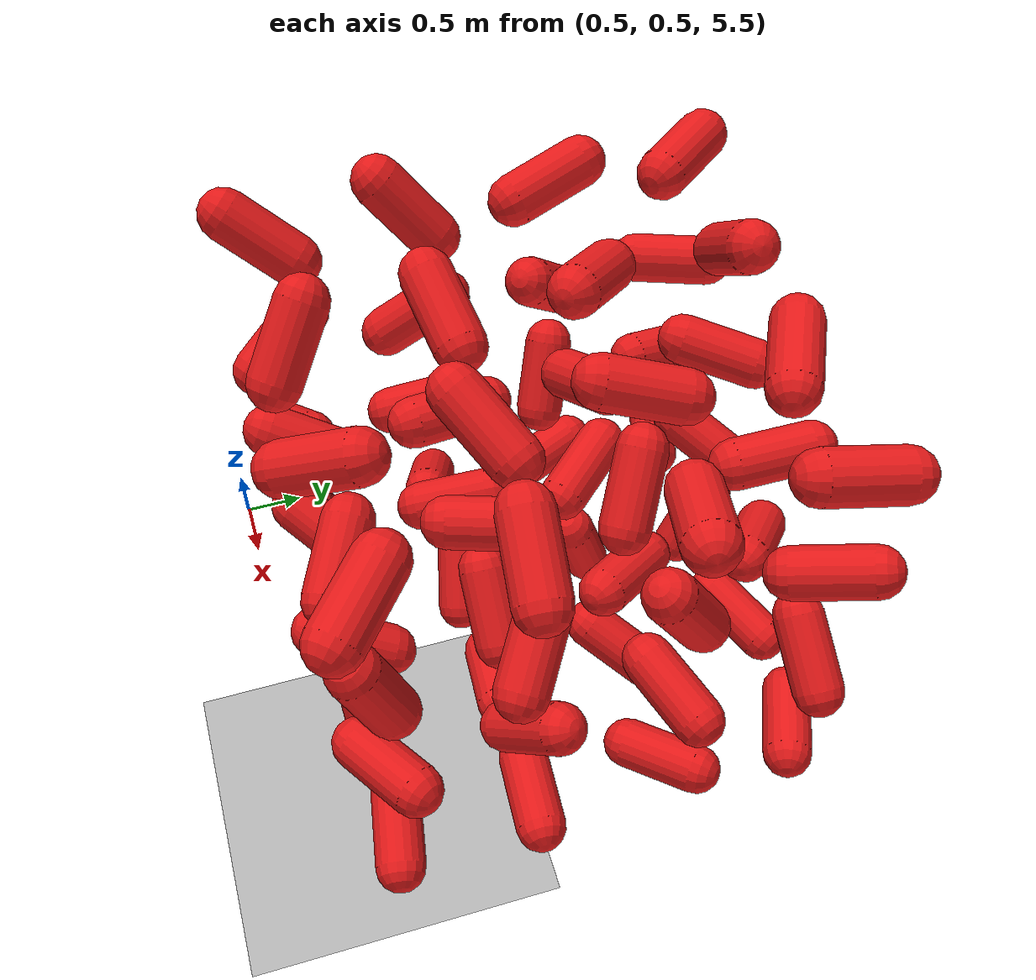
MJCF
<mujoco model="Humanoid and 100 objects">
    <compiler angle="degree"/>

    <option timestep="0.01" iterations="50" solver="PGS" jacobian="sparse" cone="elliptic" tolerance="1e-10"/>

    <size njmax="5000" nconmax="2000" nstack="1000000000"/>

    <default>
        <geom solimp=".9 .9 .01"/>

        <default class="object5">
			<geom type="capsule" material="geom" rgba=".9 .1 .1 1" size="0.200000 0.300000"/>
        </default>
    </default>

    <asset>
        <texture type="skybox" builtin="gradient" width="128" height="128" rgb1=".4 .6 .8" rgb2="0 0 0"/>
        <texture name="texgeom" type="cube" builtin="flat" mark="cross" width="128" height="128"
            rgb1="0.6 0.6 0.6" rgb2="0.6 0.6 0.6" markrgb="1 1 1"/>
        <texture name="texplane" type="2d" builtin="checker" rgb1=".4 .4 .4" rgb2=".6 .6 .6"
            width="512" height="512"/>
        <material name='geom' texture="texgeom" texuniform="true"/>
        <material name='MatPlane' reflectance='0.3' texture="texplane" texrepeat="1 1" texuniform="true"/>
    </asset>

    <visual>
        <quality shadowsize="4096" offsamples="8"/>
        <map znear="0.1" force="0.05"/>
    </visual>

    <statistic extent="4"/>

    <worldbody>
        <light directional="true" diffuse=".8 .8 .8" pos="0 0 10" dir="0 0 -10"/>

        <geom pos="0 0 0" type="plane" size="3 3 .5" rgba=".7 .7 .7 1" material="MatPlane"/>
		<body pos="1.100454 1.100313 6.100498" quat="0.115513 0.745977 -0.614010 -0.230582"> <freejoint/> <geom class="object5"/> </body>
		<body pos="1.100797 1.100507 7.200207" quat="0.439313 0.552747 -0.692587 -0.147641"> <freejoint/> <geom class="object5"/> </body>
		<body pos="1.100106 1.100975 8.300319" quat="0.294270 0.028689 0.845383 -0.444871"> <freejoint/> <geom class="object5"/> </body>
		<body pos="1.100762 1.100662 9.400040" quat="-0.630170 -0.467707 -0.099185 0.611799"> <freejoint/> <geom class="object5"/> </body>
		<body pos="1.100868 2.200561 6.100651" quat="-0.156700 -0.697527 0.544711 0.438395"> <freejoint/> <geom class="object5"/> </body>
		<body pos="1.100219 2.200448 7.200226" quat="0.647057 -0.564225 -0.260403 -0.441767"> <freejoint/> <geom class="object5"/> </body>
		<body pos="1.100583 2.200579 8.300268" quat="-0.550433 0.257038 -0.399498 -0.686554"> <freejoint/> <geom class="object5"/> </body>
		<body pos="1.100041 2.200959 9.400396" quat="0.083600 -0.661734 -0.649131 -0.365716"> <freejoint/> <geom class="object5"/> </body>
		<body pos="1.100985 3.300358 6.100094" quat="0.247465 0.501838 -0.551944 0.618285"> <freejoint/> <geom class="object5"/> </body>
		<body pos="1.100510 3.300738 7.200478" quat="-0.058828 0.740023 -0.568555 0.354472"> <freejoint/> <geom class="object5"/> </body>
		<body pos="1.100546 3.300248 8.300773" quat="-0.068834 -0.410551 0.826963 0.377944"> <freejoint/> <geom class="object5"/> </body>
		<body pos="1.100307 3.300713 9.400641" quat="0.606948 0.648172 0.418275 -0.191134"> <freejoint/> <geom class="object5"/> </body>
		<body pos="1.100068 4.400165 6.100988" quat="-0.330344 0.551071 -0.503561 0.577598"> <freejoint/> <geom class="object5"/> </body>
		<body pos="1.100027 4.400692 7.200263" quat="-0.493532 0.692082 -0.351317 -0.392460"> <freejoint/> <geom class="object5"/> </body>
		<body pos="1.100507 4.400581 8.300029" quat="-0.586839 0.663475 0.139664 0.442623"> <freejoint/> <geom class="object5"/> </body>
		<body pos="1.100364 4.400758 9.400613" quat="0.577001 0.691194 0.026177 0.434323"> <freejoint/> <geom class="object5"/> </body>
		<body pos="2.200791 1.100618 6.100693" quat="-0.256097 -0.745136 0.233166 0.569929"> <freejoint/> <geom class="object5"/> </body>
		<body pos="2.200441 1.100077 7.200088" quat="-0.676498 -0.063356 0.569521 -0.462582"> <freejoint/> <geom class="object5"/> </body>
		<body pos="2.200709 1.100631 8.300727" quat="-0.802465 -0.452509 0.347471 -0.174784"> <freejoint/> <geom class="object5"/> </body>
		<body pos="2.200483 1.100254 9.400930" quat="0.624662 -0.418631 -0.006228 0.659171"> <freejoint/> <geom class="object5"/> </body>
		<body pos="2.200151 2.200589 6.100264" quat="-0.897675 0.049127 0.416421 0.135496"> <freejoint/> <geom class="object5"/> </body>
		<body pos="2.200523 2.200308 7.200477" quat="0.558274 0.641352 -0.473115 0.230565"> <freejoint/> <geom class="object5"/> </body>
		<body pos="2.200240 2.200623 8.300900" quat="-0.002402 -0.110396 0.660927 -0.742282"> <freejoint/> <geom class="object5"/> </body>
		<body pos="2.200671 2.200637 9.400297" quat="-0.372842 -0.554905 0.180092 0.721551"> <freejoint/> <geom class="object5"/> </body>
		<body pos="2.200804 3.300315 6.100258" quat="-0.588171 -0.060558 -0.132244 0.795550"> <freejoint/> <geom class="object5"/> </body>
		<body pos="2.200496 3.300543 7.200191" quat="0.354072 0.142545 -0.618369 -0.686974"> <freejoint/> <geom class="object5"/> </body>
		<body pos="2.200760 3.300007 8.300141" quat="-0.821859 0.306503 -0.405171 0.257761"> <freejoint/> <geom class="object5"/> </body>
		<body pos="2.200171 3.300273 9.400026" quat="0.559055 -0.597907 -0.574284 0.012741"> <freejoint/> <geom class="object5"/> </body>
		<body pos="2.200161 4.400208 6.100594" quat="-0.754127 0.281360 -0.084553 -0.587349"> <freejoint/> <geom class="object5"/> </body>
		<body pos="2.200929 4.400575 7.200273" quat="-0.799110 -0.250125 0.506017 -0.206898"> <freejoint/> <geom class="object5"/> </body>
		<body pos="2.200841 4.400911 8.300592" quat="0.202447 0.193845 0.741491 0.609615"> <freejoint/> <geom class="object5"/> </body>
		<body pos="2.200832 4.400462 9.400134" quat="0.277773 -0.628588 -0.666079 0.289929"> <freejoint/> <geom class="object5"/> </body>
		<body pos="3.300523 1.100918 6.100455" quat="0.537780 -0.226819 -0.170291 0.793944"> <freejoint/> <geom class="object5"/> </body>
		<body pos="3.300248 1.100048 7.200973" quat="0.606062 0.465992 0.246419 -0.595666"> <freejoint/> <geom class="object5"/> </body>
		<body pos="3.300442 1.100003 8.300634" quat="0.230467 -0.504681 0.646662 -0.523461"> <freejoint/> <geom class="object5"/> </body>
		<body pos="3.300584 1.100682 9.400904" quat="0.300323 0.103488 -0.831722 0.455341"> <freejoint/> <geom class="object5"/> </body>
		<body pos="3.300393 2.200449 6.100228" quat="0.405299 0.559671 0.286845 0.663492"> <freejoint/> <geom class="object5"/> </body>
		<body pos="3.300164 2.200738 7.200176" quat="-0.400465 -0.405477 -0.797982 -0.196060"> <freejoint/> <geom class="object5"/> </body>
		<body pos="3.300016 2.200348 8.300505" quat="0.064347 -0.189893 -0.695531 0.689954"> <freejoint/> <geom class="object5"/> </body>
		<body pos="3.300866 2.200051 9.400957" quat="-0.221285 0.829701 0.072982 0.507251"> <freejoint/> <geom class="object5"/> </body>
		<body pos="3.300785 3.300666 6.100099" quat="-0.707450 -0.119176 0.538386 -0.442099"> <freejoint/> <geom class="object5"/> </body>
		<body pos="3.300330 3.300920 7.200482" quat="-0.579518 0.755794 0.249771 -0.174786"> <freejoint/> <geom class="object5"/> </body>
		<body pos="3.300950 3.300924 8.300959" quat="-0.371581 0.020704 -0.895250 0.245002"> <freejoint/> <geom class="object5"/> </body>
		<body pos="3.300259 3.300313 9.400091" quat="-0.555306 -0.542917 -0.290151 0.559186"> <freejoint/> <geom class="object5"/> </body>
		<body pos="3.300650 4.400761 6.100126" quat="0.568540 0.059317 0.752105 0.327996"> <freejoint/> <geom class="object5"/> </body>
		<body pos="3.300428 4.400785 7.200230" quat="0.496840 -0.135394 0.525039 -0.677608"> <freejoint/> <geom class="object5"/> </body>
		<body pos="3.300335 4.400723 8.300383" quat="-0.579169 -0.622833 -0.369527 0.374289"> <freejoint/> <geom class="object5"/> </body>
		<body pos="3.300789 4.400649 9.400748" quat="0.426175 -0.326084 0.647573 -0.541011"> <freejoint/> <geom class="object5"/> </body>
		<body pos="4.400546 1.100403 6.100528" quat="0.759153 -0.020710 -0.641432 -0.108735"> <freejoint/> <geom class="object5"/> </body>
		<body pos="4.400926 1.100944 7.200076" quat="0.450305 0.238279 0.630549 0.585540"> <freejoint/> <geom class="object5"/> </body>
		<body pos="4.400168 1.100734 8.300192" quat="0.050582 -0.090922 0.979444 0.172813"> <freejoint/> <geom class="object5"/> </body>
		<body pos="4.400962 1.100680 9.400404" quat="-0.530770 -0.046367 0.639697 0.554004"> <freejoint/> <geom class="object5"/> </body>
		<body pos="4.400277 2.200303 6.100195" quat="-0.155650 0.678800 0.112016 -0.708841"> <freejoint/> <geom class="object5"/> </body>
		<body pos="4.400920 2.200255 7.200452" quat="-0.291375 -0.198158 -0.367942 -0.860496"> <freejoint/> <geom class="object5"/> </body>
		<body pos="4.400540 2.200916 8.300285" quat="0.555763 0.136914 -0.497135 -0.652104"> <freejoint/> <geom class="object5"/> </body>
		<body pos="4.400739 2.200044 9.400229" quat="-0.815423 -0.037017 0.561544 0.135584"> <freejoint/> <geom class="object5"/> </body>
		<body pos="4.400234 3.300281 6.100087" quat="0.650267 -0.172741 0.632353 0.383984"> <freejoint/> <geom class="object5"/> </body>
		<body pos="4.400958 3.300821 7.200319" quat="-0.459039 0.343901 0.543583 -0.612807"> <freejoint/> <geom class="object5"/> </body>
		<body pos="4.400922 3.300907 8.300310" quat="-0.064406 0.303692 -0.918580 -0.244608"> <freejoint/> <geom class="object5"/> </body>
		<body pos="4.400608 3.300476 9.400476" quat="0.639608 -0.254655 0.529852 -0.495287"> <freejoint/> <geom class="object5"/> </body>
		<body pos="4.400799 4.400789 6.100467" quat="0.584397 -0.163337 0.669183 -0.428948"> <freejoint/> <geom class="object5"/> </body>
		<body pos="4.400161 4.400695 7.200208" quat="0.770444 0.222354 -0.448822 -0.394379"> <freejoint/> <geom class="object5"/> </body>
		<body pos="4.400061 4.400055 8.300009" quat="-0.486936 0.122826 -0.595633 -0.626920"> <freejoint/> <geom class="object5"/> </body>
		<body pos="4.400539 4.400826 9.400354" quat="0.043732 0.066693 0.747377 0.659596"> <freejoint/> <geom class="object5"/> </body>

    </worldbody>
</mujoco>
